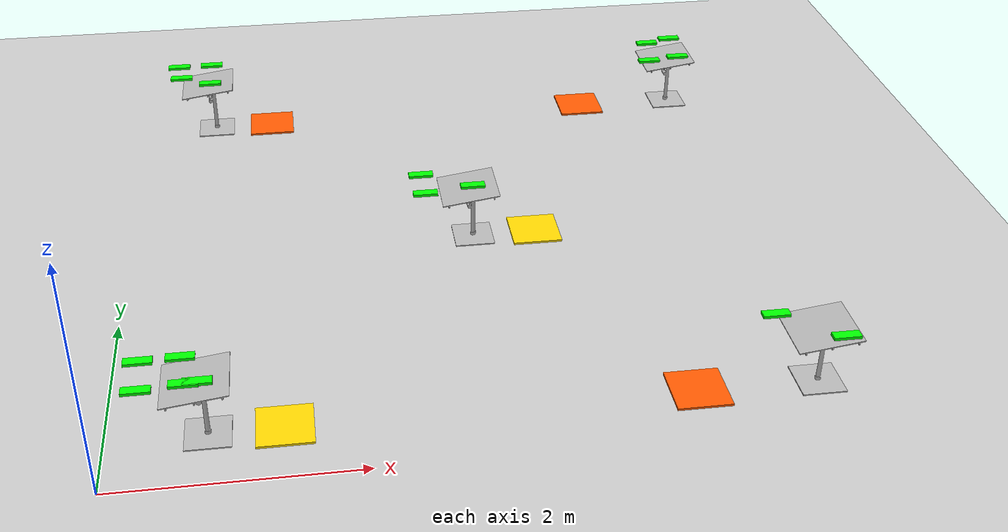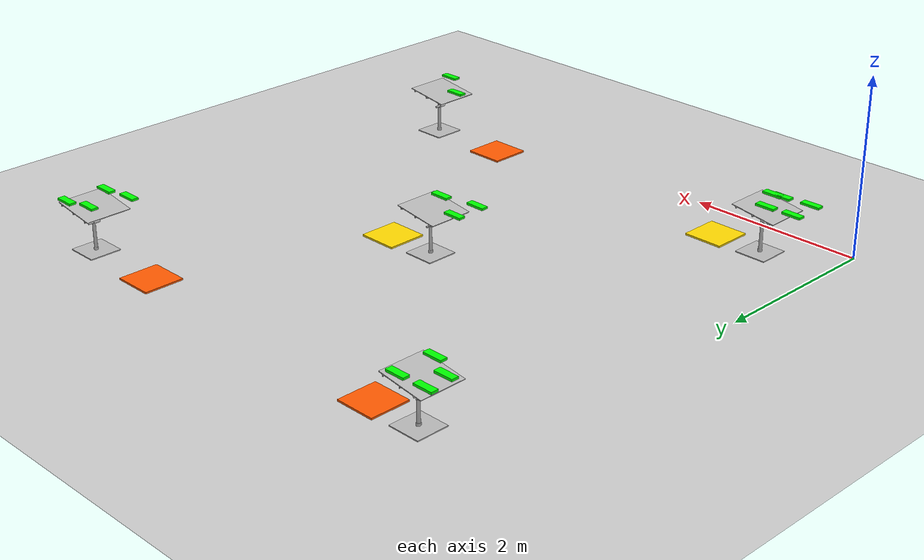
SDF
<?xml version="1.0" ?>
<sdf version="1.6">
  <world name="solar_farm_inspection">
    <include>
      <uri>model://sun</uri>
    </include>
    <include>
      <uri>model://ground_plane</uri>
    </include>

    <!-- Generated solar farm inspection objects. -->

    <include>
      <name>solar_panel_1</name>
      <uri>model://solar_panel</uri>
      <pose>0.578 0.550 0.000 0 0 0.000</pose>
    </include>

    <model name="solar_panel_1_indicator_yellow">
      <static>true</static>
      <pose>1.358 0.550 0.011 0 0 0.000</pose>
      <link name="link">
        <visual name="visual">
          <geometry>
            <box>
              <size>0.45 0.45 0.02</size>
            </box>
          </geometry>
          <material>
            <ambient>1.0 0.85 0.0 1.0</ambient>
            <diffuse>1.0 0.85 0.0 1.0</diffuse>
          </material>
        </visual>
      <collision name="collision">
        <geometry>
          <box>
            <size>0.45 0.45 0.02</size>
          </box>
        </geometry>
      </collision>
      </link>
    </model>

    <model name="solar_panel_1_contamination_1">
      <static>true</static>
      <pose>0.664 0.401 0.620 0 0 0.000</pose>
      <link name="link">
        <visual name="visual">
          <geometry>
            <box>
              <size>0.22 0.08 0.025</size>
            </box>
          </geometry>
          <material>
            <ambient>0.0 1.0 0.0 1.0</ambient>
            <diffuse>0.0 1.0 0.0 1.0</diffuse>
          </material>
        </visual>
      <collision name="collision">
        <geometry>
          <box>
            <size>0.22 0.08 0.025</size>
          </box>
        </geometry>
      </collision>
      </link>
    </model>

    <model name="solar_panel_1_contamination_2">
      <static>true</static>
      <pose>0.319 0.703 0.620 0 0 0.000</pose>
      <link name="link">
        <visual name="visual">
          <geometry>
            <box>
              <size>0.22 0.08 0.025</size>
            </box>
          </geometry>
          <material>
            <ambient>0.0 1.0 0.0 1.0</ambient>
            <diffuse>0.0 1.0 0.0 1.0</diffuse>
          </material>
        </visual>
      <collision name="collision">
        <geometry>
          <box>
            <size>0.22 0.08 0.025</size>
          </box>
        </geometry>
      </collision>
      </link>
    </model>

    <model name="solar_panel_1_contamination_3">
      <static>true</static>
      <pose>0.629 0.718 0.620 0 0 0.000</pose>
      <link name="link">
        <visual name="visual">
          <geometry>
            <box>
              <size>0.22 0.08 0.025</size>
            </box>
          </geometry>
          <material>
            <ambient>0.0 1.0 0.0 1.0</ambient>
            <diffuse>0.0 1.0 0.0 1.0</diffuse>
          </material>
        </visual>
      <collision name="collision">
        <geometry>
          <box>
            <size>0.22 0.08 0.025</size>
          </box>
        </geometry>
      </collision>
      </link>
    </model>

    <model name="solar_panel_1_contamination_4">
      <static>true</static>
      <pose>0.328 0.364 0.620 0 0 0.000</pose>
      <link name="link">
        <visual name="visual">
          <geometry>
            <box>
              <size>0.22 0.08 0.025</size>
            </box>
          </geometry>
          <material>
            <ambient>0.0 1.0 0.0 1.0</ambient>
            <diffuse>0.0 1.0 0.0 1.0</diffuse>
          </material>
        </visual>
      <collision name="collision">
        <geometry>
          <box>
            <size>0.22 0.08 0.025</size>
          </box>
        </geometry>
      </collision>
      </link>
    </model>

    <model name="solar_panel_1_contamination_5">
      <static>true</static>
      <pose>0.764 0.413 0.620 0 0 0.000</pose>
      <link name="link">
        <visual name="visual">
          <geometry>
            <box>
              <size>0.22 0.08 0.025</size>
            </box>
          </geometry>
          <material>
            <ambient>0.0 1.0 0.0 1.0</ambient>
            <diffuse>0.0 1.0 0.0 1.0</diffuse>
          </material>
        </visual>
      <collision name="collision">
        <geometry>
          <box>
            <size>0.22 0.08 0.025</size>
          </box>
        </geometry>
      </collision>
      </link>
    </model>

    <include>
      <name>solar_panel_2</name>
      <uri>model://solar_panel</uri>
      <pose>0.550 5.450 0.000 0 0 0.000</pose>
    </include>

    <model name="solar_panel_2_indicator_orange">
      <static>true</static>
      <pose>1.330 5.450 0.011 0 0 0.000</pose>
      <link name="link">
        <visual name="visual">
          <geometry>
            <box>
              <size>0.45 0.45 0.02</size>
            </box>
          </geometry>
          <material>
            <ambient>1.0 0.35 0.0 1.0</ambient>
            <diffuse>1.0 0.35 0.0 1.0</diffuse>
          </material>
        </visual>
      <collision name="collision">
        <geometry>
          <box>
            <size>0.45 0.45 0.02</size>
          </box>
        </geometry>
      </collision>
      </link>
    </model>

    <model name="solar_panel_2_contamination_1">
      <static>true</static>
      <pose>0.746 5.689 0.620 0 0 0.000</pose>
      <link name="link">
        <visual name="visual">
          <geometry>
            <box>
              <size>0.22 0.08 0.025</size>
            </box>
          </geometry>
          <material>
            <ambient>0.0 1.0 0.0 1.0</ambient>
            <diffuse>0.0 1.0 0.0 1.0</diffuse>
          </material>
        </visual>
      <collision name="collision">
        <geometry>
          <box>
            <size>0.22 0.08 0.025</size>
          </box>
        </geometry>
      </collision>
      </link>
    </model>

    <model name="solar_panel_2_contamination_2">
      <static>true</static>
      <pose>0.445 5.417 0.620 0 0 0.000</pose>
      <link name="link">
        <visual name="visual">
          <geometry>
            <box>
              <size>0.22 0.08 0.025</size>
            </box>
          </geometry>
          <material>
            <ambient>0.0 1.0 0.0 1.0</ambient>
            <diffuse>0.0 1.0 0.0 1.0</diffuse>
          </material>
        </visual>
      <collision name="collision">
        <geometry>
          <box>
            <size>0.22 0.08 0.025</size>
          </box>
        </geometry>
      </collision>
      </link>
    </model>

    <model name="solar_panel_2_contamination_3">
      <static>true</static>
      <pose>0.740 5.262 0.620 0 0 0.000</pose>
      <link name="link">
        <visual name="visual">
          <geometry>
            <box>
              <size>0.22 0.08 0.025</size>
            </box>
          </geometry>
          <material>
            <ambient>0.0 1.0 0.0 1.0</ambient>
            <diffuse>0.0 1.0 0.0 1.0</diffuse>
          </material>
        </visual>
      <collision name="collision">
        <geometry>
          <box>
            <size>0.22 0.08 0.025</size>
          </box>
        </geometry>
      </collision>
      </link>
    </model>

    <model name="solar_panel_2_contamination_4">
      <static>true</static>
      <pose>0.412 5.683 0.620 0 0 0.000</pose>
      <link name="link">
        <visual name="visual">
          <geometry>
            <box>
              <size>0.22 0.08 0.025</size>
            </box>
          </geometry>
          <material>
            <ambient>0.0 1.0 0.0 1.0</ambient>
            <diffuse>0.0 1.0 0.0 1.0</diffuse>
          </material>
        </visual>
      <collision name="collision">
        <geometry>
          <box>
            <size>0.22 0.08 0.025</size>
          </box>
        </geometry>
      </collision>
      </link>
    </model>

    <include>
      <name>solar_panel_3</name>
      <uri>model://solar_panel</uri>
      <pose>5.383 0.550 0.000 0 0 0.000</pose>
    </include>

    <model name="solar_panel_3_indicator_orange">
      <static>true</static>
      <pose>4.603 0.550 0.011 0 0 0.000</pose>
      <link name="link">
        <visual name="visual">
          <geometry>
            <box>
              <size>0.45 0.45 0.02</size>
            </box>
          </geometry>
          <material>
            <ambient>1.0 0.35 0.0 1.0</ambient>
            <diffuse>1.0 0.35 0.0 1.0</diffuse>
          </material>
        </visual>
      <collision name="collision">
        <geometry>
          <box>
            <size>0.45 0.45 0.02</size>
          </box>
        </geometry>
      </collision>
      </link>
    </model>

    <model name="solar_panel_3_contamination_1">
      <static>true</static>
      <pose>5.194 0.643 0.620 0 0 0.000</pose>
      <link name="link">
        <visual name="visual">
          <geometry>
            <box>
              <size>0.22 0.08 0.025</size>
            </box>
          </geometry>
          <material>
            <ambient>0.0 1.0 0.0 1.0</ambient>
            <diffuse>0.0 1.0 0.0 1.0</diffuse>
          </material>
        </visual>
      <collision name="collision">
        <geometry>
          <box>
            <size>0.22 0.08 0.025</size>
          </box>
        </geometry>
      </collision>
      </link>
    </model>

    <model name="solar_panel_3_contamination_2">
      <static>true</static>
      <pose>5.634 0.305 0.620 0 0 0.000</pose>
      <link name="link">
        <visual name="visual">
          <geometry>
            <box>
              <size>0.22 0.08 0.025</size>
            </box>
          </geometry>
          <material>
            <ambient>0.0 1.0 0.0 1.0</ambient>
            <diffuse>0.0 1.0 0.0 1.0</diffuse>
          </material>
        </visual>
      <collision name="collision">
        <geometry>
          <box>
            <size>0.22 0.08 0.025</size>
          </box>
        </geometry>
      </collision>
      </link>
    </model>

    <include>
      <name>solar_panel_4</name>
      <uri>model://solar_panel</uri>
      <pose>5.450 5.450 0.000 0 0 0.000</pose>
    </include>

    <model name="solar_panel_4_indicator_orange">
      <static>true</static>
      <pose>4.670 5.450 0.011 0 0 0.000</pose>
      <link name="link">
        <visual name="visual">
          <geometry>
            <box>
              <size>0.45 0.45 0.02</size>
            </box>
          </geometry>
          <material>
            <ambient>1.0 0.35 0.0 1.0</ambient>
            <diffuse>1.0 0.35 0.0 1.0</diffuse>
          </material>
        </visual>
      <collision name="collision">
        <geometry>
          <box>
            <size>0.45 0.45 0.02</size>
          </box>
        </geometry>
      </collision>
      </link>
    </model>

    <model name="solar_panel_4_contamination_1">
      <static>true</static>
      <pose>5.439 5.618 0.620 0 0 0.000</pose>
      <link name="link">
        <visual name="visual">
          <geometry>
            <box>
              <size>0.22 0.08 0.025</size>
            </box>
          </geometry>
          <material>
            <ambient>0.0 1.0 0.0 1.0</ambient>
            <diffuse>0.0 1.0 0.0 1.0</diffuse>
          </material>
        </visual>
      <collision name="collision">
        <geometry>
          <box>
            <size>0.22 0.08 0.025</size>
          </box>
        </geometry>
      </collision>
      </link>
    </model>

    <model name="solar_panel_4_contamination_2">
      <static>true</static>
      <pose>5.355 5.189 0.620 0 0 0.000</pose>
      <link name="link">
        <visual name="visual">
          <geometry>
            <box>
              <size>0.22 0.08 0.025</size>
            </box>
          </geometry>
          <material>
            <ambient>0.0 1.0 0.0 1.0</ambient>
            <diffuse>0.0 1.0 0.0 1.0</diffuse>
          </material>
        </visual>
      <collision name="collision">
        <geometry>
          <box>
            <size>0.22 0.08 0.025</size>
          </box>
        </geometry>
      </collision>
      </link>
    </model>

    <model name="solar_panel_4_contamination_3">
      <static>true</static>
      <pose>5.679 5.248 0.620 0 0 0.000</pose>
      <link name="link">
        <visual name="visual">
          <geometry>
            <box>
              <size>0.22 0.08 0.025</size>
            </box>
          </geometry>
          <material>
            <ambient>0.0 1.0 0.0 1.0</ambient>
            <diffuse>0.0 1.0 0.0 1.0</diffuse>
          </material>
        </visual>
      <collision name="collision">
        <geometry>
          <box>
            <size>0.22 0.08 0.025</size>
          </box>
        </geometry>
      </collision>
      </link>
    </model>

    <model name="solar_panel_4_contamination_4">
      <static>true</static>
      <pose>5.705 5.704 0.620 0 0 0.000</pose>
      <link name="link">
        <visual name="visual">
          <geometry>
            <box>
              <size>0.22 0.08 0.025</size>
            </box>
          </geometry>
          <material>
            <ambient>0.0 1.0 0.0 1.0</ambient>
            <diffuse>0.0 1.0 0.0 1.0</diffuse>
          </material>
        </visual>
      <collision name="collision">
        <geometry>
          <box>
            <size>0.22 0.08 0.025</size>
          </box>
        </geometry>
      </collision>
      </link>
    </model>

    <include>
      <name>solar_panel_5</name>
      <uri>model://solar_panel</uri>
      <pose>2.954 3.017 0.000 0 0 0.000</pose>
    </include>

    <model name="solar_panel_5_indicator_yellow">
      <static>true</static>
      <pose>3.734 3.017 0.011 0 0 0.000</pose>
      <link name="link">
        <visual name="visual">
          <geometry>
            <box>
              <size>0.45 0.45 0.02</size>
            </box>
          </geometry>
          <material>
            <ambient>1.0 0.85 0.0 1.0</ambient>
            <diffuse>1.0 0.85 0.0 1.0</diffuse>
          </material>
        </visual>
      <collision name="collision">
        <geometry>
          <box>
            <size>0.45 0.45 0.02</size>
          </box>
        </geometry>
      </collision>
      </link>
    </model>

    <model name="solar_panel_5_contamination_1">
      <static>true</static>
      <pose>3.132 2.879 0.620 0 0 0.000</pose>
      <link name="link">
        <visual name="visual">
          <geometry>
            <box>
              <size>0.22 0.08 0.025</size>
            </box>
          </geometry>
          <material>
            <ambient>0.0 1.0 0.0 1.0</ambient>
            <diffuse>0.0 1.0 0.0 1.0</diffuse>
          </material>
        </visual>
      <collision name="collision">
        <geometry>
          <box>
            <size>0.22 0.08 0.025</size>
          </box>
        </geometry>
      </collision>
      </link>
    </model>

    <model name="solar_panel_5_contamination_2">
      <static>true</static>
      <pose>2.688 3.126 0.620 0 0 0.000</pose>
      <link name="link">
        <visual name="visual">
          <geometry>
            <box>
              <size>0.22 0.08 0.025</size>
            </box>
          </geometry>
          <material>
            <ambient>0.0 1.0 0.0 1.0</ambient>
            <diffuse>0.0 1.0 0.0 1.0</diffuse>
          </material>
        </visual>
      <collision name="collision">
        <geometry>
          <box>
            <size>0.22 0.08 0.025</size>
          </box>
        </geometry>
      </collision>
      </link>
    </model>

    <model name="solar_panel_5_contamination_3">
      <static>true</static>
      <pose>2.695 2.798 0.620 0 0 0.000</pose>
      <link name="link">
        <visual name="visual">
          <geometry>
            <box>
              <size>0.22 0.08 0.025</size>
            </box>
          </geometry>
          <material>
            <ambient>0.0 1.0 0.0 1.0</ambient>
            <diffuse>0.0 1.0 0.0 1.0</diffuse>
          </material>
        </visual>
      <collision name="collision">
        <geometry>
          <box>
            <size>0.22 0.08 0.025</size>
          </box>
        </geometry>
      </collision>
      </link>
    </model>
    <!-- End generated solar farm inspection objects. -->

  </world>
</sdf>

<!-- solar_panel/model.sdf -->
<sdf version="1.6">
  <model name="solar_panel">

    <static>true</static>

    <link name="link">

      <visual name="visual">
        <pose>0 0 0 1.57079632679 0 0</pose>
        <geometry>
          <mesh>
            <uri>model://solar_panel/meshes/solar_panel.obj</uri>
            <scale>0.5 0.5 0.5</scale>
          </mesh>
        </geometry>
      </visual>

      <collision name="collision">
        <geometry>
          <box>
            <size>1 1 0.1</size>
          </box>
        </geometry>
      </collision>

    </link>

  </model>
</sdf>
